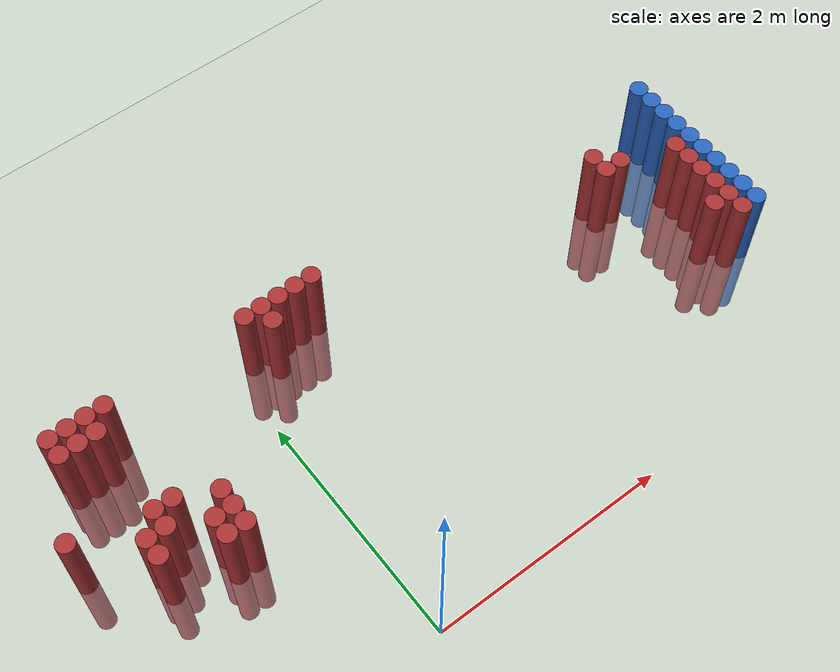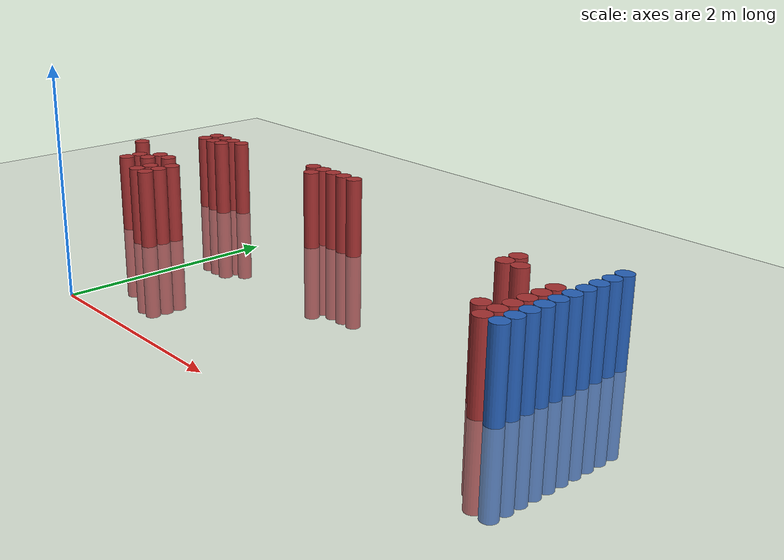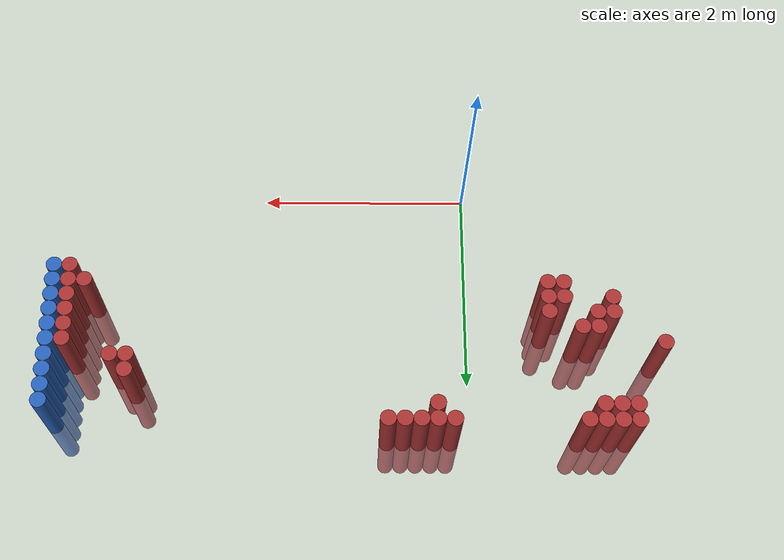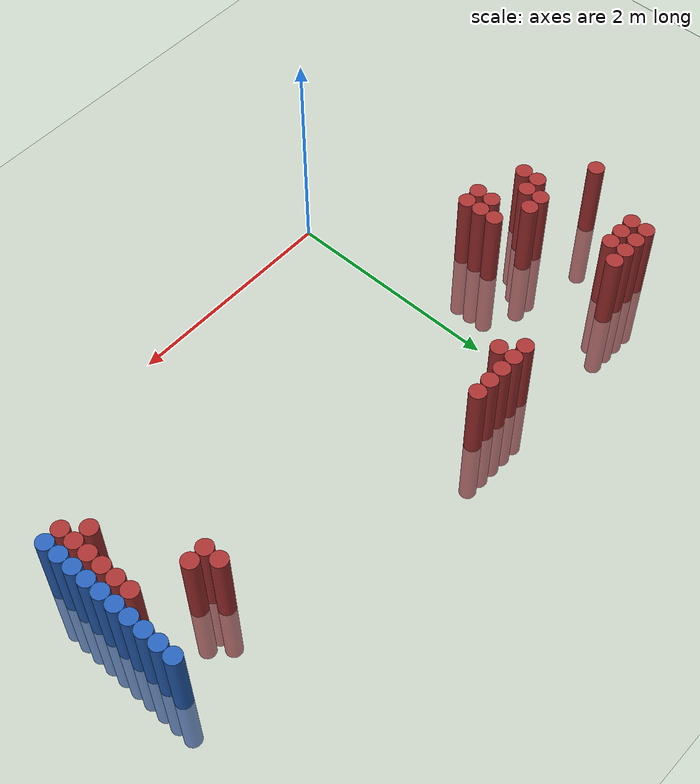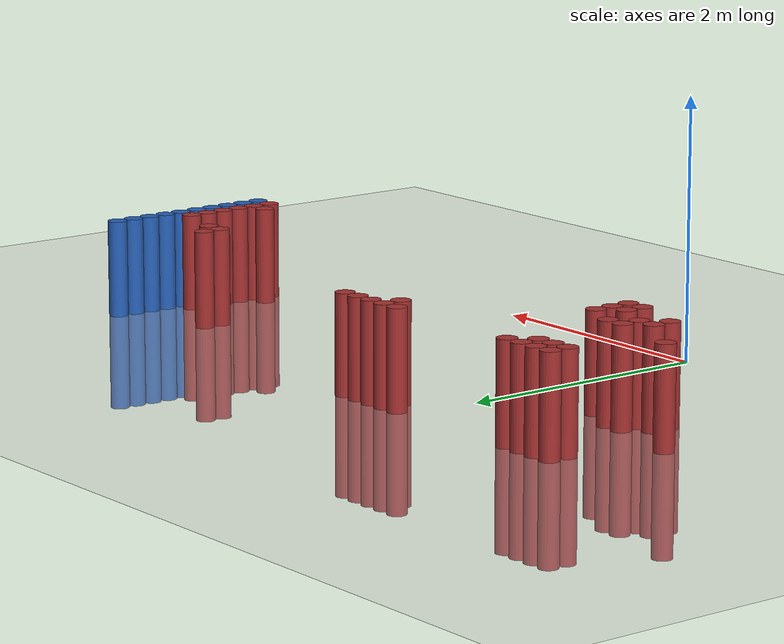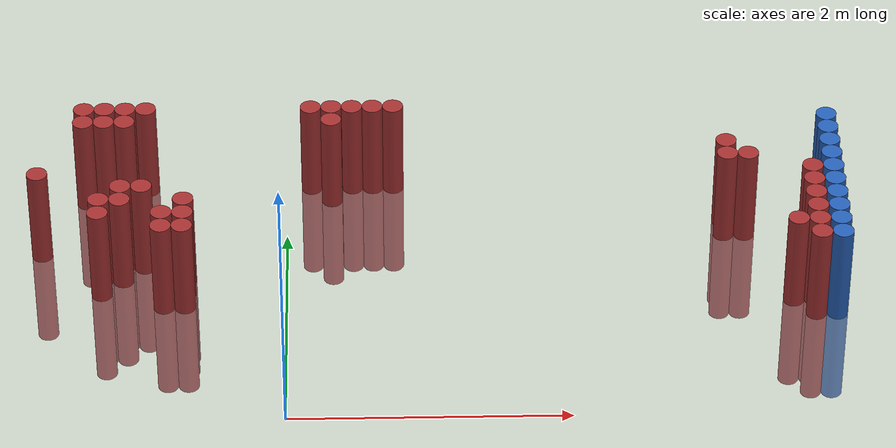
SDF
<sdf version="1.6">
 <world name="default">
  <model name="ground_plane">
   <static>1</static>
   <link name="link">
    <collision name="collision">
     <geometry><plane><normal>0 0 1</normal><size>100 100</size></plane></geometry>
     <surface><friction><ode><mu>100</mu><mu2>50</mu2></ode></friction></surface>
    </collision>
    <visual name="visual">
     <cast_shadows>0</cast_shadows>
     <geometry><plane><normal>0 0 1</normal><size>100 100</size></plane></geometry>
     <material>
      <script><uri>file://media/materials/scripts/gazebo.material</uri><name>Gazebo/Grey</name></script>
     </material>
    </visual>
   </link>
  </model>
  <model name="unit_cylinder_130">
   <static>1</static>
   <pose>3.925000 1.225000 0.000000 0.000000 0.000000 0.000000</pose>
   <link name="link">
    <inertial>
     <mass>1</mass>
     <inertia><ixx>0.145833</ixx><ixy>0</ixy><ixz>0</ixz><iyy>0.145833</iyy><iyz>0</iyz><izz>0.125</izz></inertia>
    </inertial>
    <collision name="collision">
     <geometry><cylinder><radius>0.075000</radius><length>1.5</length></cylinder></geometry>
    </collision>
    <visual name="visual">
     <geometry><cylinder><radius>0.075000</radius><length>1.5</length></cylinder></geometry>
     <material>
      <ambient>0.152000 0.379000 0.720000 1</ambient>
      <diffuse>0.152000 0.379000 0.720000 1</diffuse>
     </material>
     <material>
      <script><name>Gazebo/Grey</name><uri>file://media/materials/scripts/gazebo.material</uri></script>
     </material>
    </visual>
   </link>
  </model>
  <model name="unit_cylinder_132">
   <static>1</static>
   <pose>3.925000 1.375000 0.000000 0.000000 0.000000 0.000000</pose>
   <link name="link">
    <inertial>
     <mass>1</mass>
     <inertia><ixx>0.145833</ixx><ixy>0</ixy><ixz>0</ixz><iyy>0.145833</iyy><iyz>0</iyz><izz>0.125</izz></inertia>
    </inertial>
    <collision name="collision">
     <geometry><cylinder><radius>0.075000</radius><length>1.5</length></cylinder></geometry>
    </collision>
    <visual name="visual">
     <geometry><cylinder><radius>0.075000</radius><length>1.5</length></cylinder></geometry>
     <material>
      <ambient>0.152000 0.379000 0.720000 1</ambient>
      <diffuse>0.152000 0.379000 0.720000 1</diffuse>
     </material>
     <material>
      <script><name>Gazebo/Grey</name><uri>file://media/materials/scripts/gazebo.material</uri></script>
     </material>
    </visual>
   </link>
  </model>
  <model name="unit_cylinder_134">
   <static>1</static>
   <pose>3.925000 1.525000 0.000000 0.000000 0.000000 0.000000</pose>
   <link name="link">
    <inertial>
     <mass>1</mass>
     <inertia><ixx>0.145833</ixx><ixy>0</ixy><ixz>0</ixz><iyy>0.145833</iyy><iyz>0</iyz><izz>0.125</izz></inertia>
    </inertial>
    <collision name="collision">
     <geometry><cylinder><radius>0.075000</radius><length>1.5</length></cylinder></geometry>
    </collision>
    <visual name="visual">
     <geometry><cylinder><radius>0.075000</radius><length>1.5</length></cylinder></geometry>
     <material>
      <ambient>0.152000 0.379000 0.720000 1</ambient>
      <diffuse>0.152000 0.379000 0.720000 1</diffuse>
     </material>
     <material>
      <script><name>Gazebo/Grey</name><uri>file://media/materials/scripts/gazebo.material</uri></script>
     </material>
    </visual>
   </link>
  </model>
  <model name="unit_cylinder_136">
   <static>1</static>
   <pose>3.925000 1.675000 0.000000 0.000000 0.000000 0.000000</pose>
   <link name="link">
    <inertial>
     <mass>1</mass>
     <inertia><ixx>0.145833</ixx><ixy>0</ixy><ixz>0</ixz><iyy>0.145833</iyy><iyz>0</iyz><izz>0.125</izz></inertia>
    </inertial>
    <collision name="collision">
     <geometry><cylinder><radius>0.075000</radius><length>1.5</length></cylinder></geometry>
    </collision>
    <visual name="visual">
     <geometry><cylinder><radius>0.075000</radius><length>1.5</length></cylinder></geometry>
     <material>
      <ambient>0.152000 0.379000 0.720000 1</ambient>
      <diffuse>0.152000 0.379000 0.720000 1</diffuse>
     </material>
     <material>
      <script><name>Gazebo/Grey</name><uri>file://media/materials/scripts/gazebo.material</uri></script>
     </material>
    </visual>
   </link>
  </model>
  <model name="unit_cylinder_138">
   <static>1</static>
   <pose>3.925000 1.825000 0.000000 0.000000 0.000000 0.000000</pose>
   <link name="link">
    <inertial>
     <mass>1</mass>
     <inertia><ixx>0.145833</ixx><ixy>0</ixy><ixz>0</ixz><iyy>0.145833</iyy><iyz>0</iyz><izz>0.125</izz></inertia>
    </inertial>
    <collision name="collision">
     <geometry><cylinder><radius>0.075000</radius><length>1.5</length></cylinder></geometry>
    </collision>
    <visual name="visual">
     <geometry><cylinder><radius>0.075000</radius><length>1.5</length></cylinder></geometry>
     <material>
      <ambient>0.152000 0.379000 0.720000 1</ambient>
      <diffuse>0.152000 0.379000 0.720000 1</diffuse>
     </material>
     <material>
      <script><name>Gazebo/Grey</name><uri>file://media/materials/scripts/gazebo.material</uri></script>
     </material>
    </visual>
   </link>
  </model>
  <model name="unit_cylinder_140">
   <static>1</static>
   <pose>3.925000 1.975000 0.000000 0.000000 0.000000 0.000000</pose>
   <link name="link">
    <inertial>
     <mass>1</mass>
     <inertia><ixx>0.145833</ixx><ixy>0</ixy><ixz>0</ixz><iyy>0.145833</iyy><iyz>0</iyz><izz>0.125</izz></inertia>
    </inertial>
    <collision name="collision">
     <geometry><cylinder><radius>0.075000</radius><length>1.5</length></cylinder></geometry>
    </collision>
    <visual name="visual">
     <geometry><cylinder><radius>0.075000</radius><length>1.5</length></cylinder></geometry>
     <material>
      <ambient>0.152000 0.379000 0.720000 1</ambient>
      <diffuse>0.152000 0.379000 0.720000 1</diffuse>
     </material>
     <material>
      <script><name>Gazebo/Grey</name><uri>file://media/materials/scripts/gazebo.material</uri></script>
     </material>
    </visual>
   </link>
  </model>
  <model name="unit_cylinder_142">
   <static>1</static>
   <pose>3.925000 2.125000 0.000000 0.000000 0.000000 0.000000</pose>
   <link name="link">
    <inertial>
     <mass>1</mass>
     <inertia><ixx>0.145833</ixx><ixy>0</ixy><ixz>0</ixz><iyy>0.145833</iyy><iyz>0</iyz><izz>0.125</izz></inertia>
    </inertial>
    <collision name="collision">
     <geometry><cylinder><radius>0.075000</radius><length>1.5</length></cylinder></geometry>
    </collision>
    <visual name="visual">
     <geometry><cylinder><radius>0.075000</radius><length>1.5</length></cylinder></geometry>
     <material>
      <ambient>0.152000 0.379000 0.720000 1</ambient>
      <diffuse>0.152000 0.379000 0.720000 1</diffuse>
     </material>
     <material>
      <script><name>Gazebo/Grey</name><uri>file://media/materials/scripts/gazebo.material</uri></script>
     </material>
    </visual>
   </link>
  </model>
  <model name="unit_cylinder_144">
   <static>1</static>
   <pose>3.925000 2.275000 0.000000 0.000000 0.000000 0.000000</pose>
   <link name="link">
    <inertial>
     <mass>1</mass>
     <inertia><ixx>0.145833</ixx><ixy>0</ixy><ixz>0</ixz><iyy>0.145833</iyy><iyz>0</iyz><izz>0.125</izz></inertia>
    </inertial>
    <collision name="collision">
     <geometry><cylinder><radius>0.075000</radius><length>1.5</length></cylinder></geometry>
    </collision>
    <visual name="visual">
     <geometry><cylinder><radius>0.075000</radius><length>1.5</length></cylinder></geometry>
     <material>
      <ambient>0.152000 0.379000 0.720000 1</ambient>
      <diffuse>0.152000 0.379000 0.720000 1</diffuse>
     </material>
     <material>
      <script><name>Gazebo/Grey</name><uri>file://media/materials/scripts/gazebo.material</uri></script>
     </material>
    </visual>
   </link>
  </model>
  <model name="unit_cylinder_146">
   <static>1</static>
   <pose>3.925000 2.425000 0.000000 0.000000 0.000000 0.000000</pose>
   <link name="link">
    <inertial>
     <mass>1</mass>
     <inertia><ixx>0.145833</ixx><ixy>0</ixy><ixz>0</ixz><iyy>0.145833</iyy><iyz>0</iyz><izz>0.125</izz></inertia>
    </inertial>
    <collision name="collision">
     <geometry><cylinder><radius>0.075000</radius><length>1.5</length></cylinder></geometry>
    </collision>
    <visual name="visual">
     <geometry><cylinder><radius>0.075000</radius><length>1.5</length></cylinder></geometry>
     <material>
      <ambient>0.152000 0.379000 0.720000 1</ambient>
      <diffuse>0.152000 0.379000 0.720000 1</diffuse>
     </material>
     <material>
      <script><name>Gazebo/Grey</name><uri>file://media/materials/scripts/gazebo.material</uri></script>
     </material>
    </visual>
   </link>
  </model>
  <model name="unit_cylinder_319">
   <static>1</static>
   <pose>-1.775000 1.825000 0.000000 0.000000 0.000000 0.000000</pose>
   <link name="link">
    <inertial>
     <mass>1</mass>
     <inertia><ixx>0.145833</ixx><ixy>0</ixy><ixz>0</ixz><iyy>0.145833</iyy><iyz>0</iyz><izz>0.125</izz></inertia>
    </inertial>
    <collision name="collision">
     <geometry><cylinder><radius>0.075000</radius><length>1.5</length></cylinder></geometry>
    </collision>
    <visual name="visual">
     <geometry><cylinder><radius>0.075000</radius><length>1.5</length></cylinder></geometry>
     <material>
      <ambient>0.648000 0.192000 0.192000 1</ambient>
      <diffuse>0.648000 0.192000 0.192000 1</diffuse>
     </material>
     <material>
      <script><name>Gazebo/Grey</name><uri>file://media/materials/scripts/gazebo.material</uri></script>
     </material>
    </visual>
   </link>
  </model>
  <model name="unit_cylinder_323">
   <static>1</static>
   <pose>-1.475000 2.425000 0.000000 0.000000 0.000000 0.000000</pose>
   <link name="link">
    <inertial>
     <mass>1</mass>
     <inertia><ixx>0.145833</ixx><ixy>0</ixy><ixz>0</ixz><iyy>0.145833</iyy><iyz>0</iyz><izz>0.125</izz></inertia>
    </inertial>
    <collision name="collision">
     <geometry><cylinder><radius>0.075000</radius><length>1.5</length></cylinder></geometry>
    </collision>
    <visual name="visual">
     <geometry><cylinder><radius>0.075000</radius><length>1.5</length></cylinder></geometry>
     <material>
      <ambient>0.648000 0.192000 0.192000 1</ambient>
      <diffuse>0.648000 0.192000 0.192000 1</diffuse>
     </material>
     <material>
      <script><name>Gazebo/Grey</name><uri>file://media/materials/scripts/gazebo.material</uri></script>
     </material>
    </visual>
   </link>
  </model>
  <model name="unit_cylinder_324">
   <static>1</static>
   <pose>-1.475000 2.575000 0.000000 0.000000 0.000000 0.000000</pose>
   <link name="link">
    <inertial>
     <mass>1</mass>
     <inertia><ixx>0.145833</ixx><ixy>0</ixy><ixz>0</ixz><iyy>0.145833</iyy><iyz>0</iyz><izz>0.125</izz></inertia>
    </inertial>
    <collision name="collision">
     <geometry><cylinder><radius>0.075000</radius><length>1.5</length></cylinder></geometry>
    </collision>
    <visual name="visual">
     <geometry><cylinder><radius>0.075000</radius><length>1.5</length></cylinder></geometry>
     <material>
      <ambient>0.648000 0.192000 0.192000 1</ambient>
      <diffuse>0.648000 0.192000 0.192000 1</diffuse>
     </material>
     <material>
      <script><name>Gazebo/Grey</name><uri>file://media/materials/scripts/gazebo.material</uri></script>
     </material>
    </visual>
   </link>
  </model>
  <model name="unit_cylinder_327">
   <static>1</static>
   <pose>-1.325000 1.375000 0.000000 0.000000 0.000000 0.000000</pose>
   <link name="link">
    <inertial>
     <mass>1</mass>
     <inertia><ixx>0.145833</ixx><ixy>0</ixy><ixz>0</ixz><iyy>0.145833</iyy><iyz>0</iyz><izz>0.125</izz></inertia>
    </inertial>
    <collision name="collision">
     <geometry><cylinder><radius>0.075000</radius><length>1.5</length></cylinder></geometry>
    </collision>
    <visual name="visual">
     <geometry><cylinder><radius>0.075000</radius><length>1.5</length></cylinder></geometry>
     <material>
      <ambient>0.648000 0.192000 0.192000 1</ambient>
      <diffuse>0.648000 0.192000 0.192000 1</diffuse>
     </material>
     <material>
      <script><name>Gazebo/Grey</name><uri>file://media/materials/scripts/gazebo.material</uri></script>
     </material>
    </visual>
   </link>
  </model>
  <model name="unit_cylinder_328">
   <static>1</static>
   <pose>-1.325000 1.525000 0.000000 0.000000 0.000000 0.000000</pose>
   <link name="link">
    <inertial>
     <mass>1</mass>
     <inertia><ixx>0.145833</ixx><ixy>0</ixy><ixz>0</ixz><iyy>0.145833</iyy><iyz>0</iyz><izz>0.125</izz></inertia>
    </inertial>
    <collision name="collision">
     <geometry><cylinder><radius>0.075000</radius><length>1.5</length></cylinder></geometry>
    </collision>
    <visual name="visual">
     <geometry><cylinder><radius>0.075000</radius><length>1.5</length></cylinder></geometry>
     <material>
      <ambient>0.648000 0.192000 0.192000 1</ambient>
      <diffuse>0.648000 0.192000 0.192000 1</diffuse>
     </material>
     <material>
      <script><name>Gazebo/Grey</name><uri>file://media/materials/scripts/gazebo.material</uri></script>
     </material>
    </visual>
   </link>
  </model>
  <model name="unit_cylinder_329">
   <static>1</static>
   <pose>-1.325000 2.425000 0.000000 0.000000 0.000000 0.000000</pose>
   <link name="link">
    <inertial>
     <mass>1</mass>
     <inertia><ixx>0.145833</ixx><ixy>0</ixy><ixz>0</ixz><iyy>0.145833</iyy><iyz>0</iyz><izz>0.125</izz></inertia>
    </inertial>
    <collision name="collision">
     <geometry><cylinder><radius>0.075000</radius><length>1.5</length></cylinder></geometry>
    </collision>
    <visual name="visual">
     <geometry><cylinder><radius>0.075000</radius><length>1.5</length></cylinder></geometry>
     <material>
      <ambient>0.648000 0.192000 0.192000 1</ambient>
      <diffuse>0.648000 0.192000 0.192000 1</diffuse>
     </material>
     <material>
      <script><name>Gazebo/Grey</name><uri>file://media/materials/scripts/gazebo.material</uri></script>
     </material>
    </visual>
   </link>
  </model>
  <model name="unit_cylinder_330">
   <static>1</static>
   <pose>-1.325000 2.575000 0.000000 0.000000 0.000000 0.000000</pose>
   <link name="link">
    <inertial>
     <mass>1</mass>
     <inertia><ixx>0.145833</ixx><ixy>0</ixy><ixz>0</ixz><iyy>0.145833</iyy><iyz>0</iyz><izz>0.125</izz></inertia>
    </inertial>
    <collision name="collision">
     <geometry><cylinder><radius>0.075000</radius><length>1.5</length></cylinder></geometry>
    </collision>
    <visual name="visual">
     <geometry><cylinder><radius>0.075000</radius><length>1.5</length></cylinder></geometry>
     <material>
      <ambient>0.648000 0.192000 0.192000 1</ambient>
      <diffuse>0.648000 0.192000 0.192000 1</diffuse>
     </material>
     <material>
      <script><name>Gazebo/Grey</name><uri>file://media/materials/scripts/gazebo.material</uri></script>
     </material>
    </visual>
   </link>
  </model>
  <model name="unit_cylinder_337">
   <static>1</static>
   <pose>-1.175000 1.525000 0.000000 0.000000 0.000000 0.000000</pose>
   <link name="link">
    <inertial>
     <mass>1</mass>
     <inertia><ixx>0.145833</ixx><ixy>0</ixy><ixz>0</ixz><iyy>0.145833</iyy><iyz>0</iyz><izz>0.125</izz></inertia>
    </inertial>
    <collision name="collision">
     <geometry><cylinder><radius>0.075000</radius><length>1.5</length></cylinder></geometry>
    </collision>
    <visual name="visual">
     <geometry><cylinder><radius>0.075000</radius><length>1.5</length></cylinder></geometry>
     <material>
      <ambient>0.648000 0.192000 0.192000 1</ambient>
      <diffuse>0.648000 0.192000 0.192000 1</diffuse>
     </material>
     <material>
      <script><name>Gazebo/Grey</name><uri>file://media/materials/scripts/gazebo.material</uri></script>
     </material>
    </visual>
   </link>
  </model>
  <model name="unit_cylinder_338">
   <static>1</static>
   <pose>-1.175000 1.675000 0.000000 0.000000 0.000000 0.000000</pose>
   <link name="link">
    <inertial>
     <mass>1</mass>
     <inertia><ixx>0.145833</ixx><ixy>0</ixy><ixz>0</ixz><iyy>0.145833</iyy><iyz>0</iyz><izz>0.125</izz></inertia>
    </inertial>
    <collision name="collision">
     <geometry><cylinder><radius>0.075000</radius><length>1.5</length></cylinder></geometry>
    </collision>
    <visual name="visual">
     <geometry><cylinder><radius>0.075000</radius><length>1.5</length></cylinder></geometry>
     <material>
      <ambient>0.648000 0.192000 0.192000 1</ambient>
      <diffuse>0.648000 0.192000 0.192000 1</diffuse>
     </material>
     <material>
      <script><name>Gazebo/Grey</name><uri>file://media/materials/scripts/gazebo.material</uri></script>
     </material>
    </visual>
   </link>
  </model>
  <model name="unit_cylinder_339">
   <static>1</static>
   <pose>-1.175000 2.425000 0.000000 0.000000 0.000000 0.000000</pose>
   <link name="link">
    <inertial>
     <mass>1</mass>
     <inertia><ixx>0.145833</ixx><ixy>0</ixy><ixz>0</ixz><iyy>0.145833</iyy><iyz>0</iyz><izz>0.125</izz></inertia>
    </inertial>
    <collision name="collision">
     <geometry><cylinder><radius>0.075000</radius><length>1.5</length></cylinder></geometry>
    </collision>
    <visual name="visual">
     <geometry><cylinder><radius>0.075000</radius><length>1.5</length></cylinder></geometry>
     <material>
      <ambient>0.648000 0.192000 0.192000 1</ambient>
      <diffuse>0.648000 0.192000 0.192000 1</diffuse>
     </material>
     <material>
      <script><name>Gazebo/Grey</name><uri>file://media/materials/scripts/gazebo.material</uri></script>
     </material>
    </visual>
   </link>
  </model>
  <model name="unit_cylinder_340">
   <static>1</static>
   <pose>-1.175000 2.575000 0.000000 0.000000 0.000000 0.000000</pose>
   <link name="link">
    <inertial>
     <mass>1</mass>
     <inertia><ixx>0.145833</ixx><ixy>0</ixy><ixz>0</ixz><iyy>0.145833</iyy><iyz>0</iyz><izz>0.125</izz></inertia>
    </inertial>
    <collision name="collision">
     <geometry><cylinder><radius>0.075000</radius><length>1.5</length></cylinder></geometry>
    </collision>
    <visual name="visual">
     <geometry><cylinder><radius>0.075000</radius><length>1.5</length></cylinder></geometry>
     <material>
      <ambient>0.648000 0.192000 0.192000 1</ambient>
      <diffuse>0.648000 0.192000 0.192000 1</diffuse>
     </material>
     <material>
      <script><name>Gazebo/Grey</name><uri>file://media/materials/scripts/gazebo.material</uri></script>
     </material>
    </visual>
   </link>
  </model>
  <model name="unit_cylinder_345">
   <static>1</static>
   <pose>-1.025000 1.675000 0.000000 0.000000 0.000000 0.000000</pose>
   <link name="link">
    <inertial>
     <mass>1</mass>
     <inertia><ixx>0.145833</ixx><ixy>0</ixy><ixz>0</ixz><iyy>0.145833</iyy><iyz>0</iyz><izz>0.125</izz></inertia>
    </inertial>
    <collision name="collision">
     <geometry><cylinder><radius>0.075000</radius><length>1.5</length></cylinder></geometry>
    </collision>
    <visual name="visual">
     <geometry><cylinder><radius>0.075000</radius><length>1.5</length></cylinder></geometry>
     <material>
      <ambient>0.648000 0.192000 0.192000 1</ambient>
      <diffuse>0.648000 0.192000 0.192000 1</diffuse>
     </material>
     <material>
      <script><name>Gazebo/Grey</name><uri>file://media/materials/scripts/gazebo.material</uri></script>
     </material>
    </visual>
   </link>
  </model>
  <model name="unit_cylinder_346">
   <static>1</static>
   <pose>-1.025000 2.575000 0.000000 0.000000 0.000000 0.000000</pose>
   <link name="link">
    <inertial>
     <mass>1</mass>
     <inertia><ixx>0.145833</ixx><ixy>0</ixy><ixz>0</ixz><iyy>0.145833</iyy><iyz>0</iyz><izz>0.125</izz></inertia>
    </inertial>
    <collision name="collision">
     <geometry><cylinder><radius>0.075000</radius><length>1.5</length></cylinder></geometry>
    </collision>
    <visual name="visual">
     <geometry><cylinder><radius>0.075000</radius><length>1.5</length></cylinder></geometry>
     <material>
      <ambient>0.648000 0.192000 0.192000 1</ambient>
      <diffuse>0.648000 0.192000 0.192000 1</diffuse>
     </material>
     <material>
      <script><name>Gazebo/Grey</name><uri>file://media/materials/scripts/gazebo.material</uri></script>
     </material>
    </visual>
   </link>
  </model>
  <model name="unit_cylinder_350">
   <static>1</static>
   <pose>-0.875000 1.225000 0.000000 0.000000 0.000000 0.000000</pose>
   <link name="link">
    <inertial>
     <mass>1</mass>
     <inertia><ixx>0.145833</ixx><ixy>0</ixy><ixz>0</ixz><iyy>0.145833</iyy><iyz>0</iyz><izz>0.125</izz></inertia>
    </inertial>
    <collision name="collision">
     <geometry><cylinder><radius>0.075000</radius><length>1.5</length></cylinder></geometry>
    </collision>
    <visual name="visual">
     <geometry><cylinder><radius>0.075000</radius><length>1.5</length></cylinder></geometry>
     <material>
      <ambient>0.648000 0.192000 0.192000 1</ambient>
      <diffuse>0.648000 0.192000 0.192000 1</diffuse>
     </material>
     <material>
      <script><name>Gazebo/Grey</name><uri>file://media/materials/scripts/gazebo.material</uri></script>
     </material>
    </visual>
   </link>
  </model>
  <model name="unit_cylinder_351">
   <static>1</static>
   <pose>-0.875000 1.375000 0.000000 0.000000 0.000000 0.000000</pose>
   <link name="link">
    <inertial>
     <mass>1</mass>
     <inertia><ixx>0.145833</ixx><ixy>0</ixy><ixz>0</ixz><iyy>0.145833</iyy><iyz>0</iyz><izz>0.125</izz></inertia>
    </inertial>
    <collision name="collision">
     <geometry><cylinder><radius>0.075000</radius><length>1.5</length></cylinder></geometry>
    </collision>
    <visual name="visual">
     <geometry><cylinder><radius>0.075000</radius><length>1.5</length></cylinder></geometry>
     <material>
      <ambient>0.648000 0.192000 0.192000 1</ambient>
      <diffuse>0.648000 0.192000 0.192000 1</diffuse>
     </material>
     <material>
      <script><name>Gazebo/Grey</name><uri>file://media/materials/scripts/gazebo.material</uri></script>
     </material>
    </visual>
   </link>
  </model>
  <model name="unit_cylinder_358">
   <static>1</static>
   <pose>-0.725000 1.225000 0.000000 0.000000 0.000000 0.000000</pose>
   <link name="link">
    <inertial>
     <mass>1</mass>
     <inertia><ixx>0.145833</ixx><ixy>0</ixy><ixz>0</ixz><iyy>0.145833</iyy><iyz>0</iyz><izz>0.125</izz></inertia>
    </inertial>
    <collision name="collision">
     <geometry><cylinder><radius>0.075000</radius><length>1.5</length></cylinder></geometry>
    </collision>
    <visual name="visual">
     <geometry><cylinder><radius>0.075000</radius><length>1.5</length></cylinder></geometry>
     <material>
      <ambient>0.648000 0.192000 0.192000 1</ambient>
      <diffuse>0.648000 0.192000 0.192000 1</diffuse>
     </material>
     <material>
      <script><name>Gazebo/Grey</name><uri>file://media/materials/scripts/gazebo.material</uri></script>
     </material>
    </visual>
   </link>
  </model>
  <model name="unit_cylinder_359">
   <static>1</static>
   <pose>-0.725000 1.375000 0.000000 0.000000 0.000000 0.000000</pose>
   <link name="link">
    <inertial>
     <mass>1</mass>
     <inertia><ixx>0.145833</ixx><ixy>0</ixy><ixz>0</ixz><iyy>0.145833</iyy><iyz>0</iyz><izz>0.125</izz></inertia>
    </inertial>
    <collision name="collision">
     <geometry><cylinder><radius>0.075000</radius><length>1.5</length></cylinder></geometry>
    </collision>
    <visual name="visual">
     <geometry><cylinder><radius>0.075000</radius><length>1.5</length></cylinder></geometry>
     <material>
      <ambient>0.648000 0.192000 0.192000 1</ambient>
      <diffuse>0.648000 0.192000 0.192000 1</diffuse>
     </material>
     <material>
      <script><name>Gazebo/Grey</name><uri>file://media/materials/scripts/gazebo.material</uri></script>
     </material>
    </visual>
   </link>
  </model>
  <model name="unit_cylinder_360">
   <static>1</static>
   <pose>-0.725000 1.525000 0.000000 0.000000 0.000000 0.000000</pose>
   <link name="link">
    <inertial>
     <mass>1</mass>
     <inertia><ixx>0.145833</ixx><ixy>0</ixy><ixz>0</ixz><iyy>0.145833</iyy><iyz>0</iyz><izz>0.125</izz></inertia>
    </inertial>
    <collision name="collision">
     <geometry><cylinder><radius>0.075000</radius><length>1.5</length></cylinder></geometry>
    </collision>
    <visual name="visual">
     <geometry><cylinder><radius>0.075000</radius><length>1.5</length></cylinder></geometry>
     <material>
      <ambient>0.648000 0.192000 0.192000 1</ambient>
      <diffuse>0.648000 0.192000 0.192000 1</diffuse>
     </material>
     <material>
      <script><name>Gazebo/Grey</name><uri>file://media/materials/scripts/gazebo.material</uri></script>
     </material>
    </visual>
   </link>
  </model>
  <model name="unit_cylinder_393">
   <static>1</static>
   <pose>0.175000 2.575000 0.000000 0.000000 0.000000 0.000000</pose>
   <link name="link">
    <inertial>
     <mass>1</mass>
     <inertia><ixx>0.145833</ixx><ixy>0</ixy><ixz>0</ixz><iyy>0.145833</iyy><iyz>0</iyz><izz>0.125</izz></inertia>
    </inertial>
    <collision name="collision">
     <geometry><cylinder><radius>0.075000</radius><length>1.5</length></cylinder></geometry>
    </collision>
    <visual name="visual">
     <geometry><cylinder><radius>0.075000</radius><length>1.5</length></cylinder></geometry>
     <material>
      <ambient>0.648000 0.192000 0.192000 1</ambient>
      <diffuse>0.648000 0.192000 0.192000 1</diffuse>
     </material>
     <material>
      <script><name>Gazebo/Grey</name><uri>file://media/materials/scripts/gazebo.material</uri></script>
     </material>
    </visual>
   </link>
  </model>
  <model name="unit_cylinder_396">
   <static>1</static>
   <pose>0.325000 2.425000 0.000000 0.000000 0.000000 0.000000</pose>
   <link name="link">
    <inertial>
     <mass>1</mass>
     <inertia><ixx>0.145833</ixx><ixy>0</ixy><ixz>0</ixz><iyy>0.145833</iyy><iyz>0</iyz><izz>0.125</izz></inertia>
    </inertial>
    <collision name="collision">
     <geometry><cylinder><radius>0.075000</radius><length>1.5</length></cylinder></geometry>
    </collision>
    <visual name="visual">
     <geometry><cylinder><radius>0.075000</radius><length>1.5</length></cylinder></geometry>
     <material>
      <ambient>0.648000 0.192000 0.192000 1</ambient>
      <diffuse>0.648000 0.192000 0.192000 1</diffuse>
     </material>
     <material>
      <script><name>Gazebo/Grey</name><uri>file://media/materials/scripts/gazebo.material</uri></script>
     </material>
    </visual>
   </link>
  </model>
  <model name="unit_cylinder_397">
   <static>1</static>
   <pose>0.325000 2.575000 0.000000 0.000000 0.000000 0.000000</pose>
   <link name="link">
    <inertial>
     <mass>1</mass>
     <inertia><ixx>0.145833</ixx><ixy>0</ixy><ixz>0</ixz><iyy>0.145833</iyy><iyz>0</iyz><izz>0.125</izz></inertia>
    </inertial>
    <collision name="collision">
     <geometry><cylinder><radius>0.075000</radius><length>1.5</length></cylinder></geometry>
    </collision>
    <visual name="visual">
     <geometry><cylinder><radius>0.075000</radius><length>1.5</length></cylinder></geometry>
     <material>
      <ambient>0.648000 0.192000 0.192000 1</ambient>
      <diffuse>0.648000 0.192000 0.192000 1</diffuse>
     </material>
     <material>
      <script><name>Gazebo/Grey</name><uri>file://media/materials/scripts/gazebo.material</uri></script>
     </material>
    </visual>
   </link>
  </model>
  <model name="unit_cylinder_399">
   <static>1</static>
   <pose>0.475000 2.575000 0.000000 0.000000 0.000000 0.000000</pose>
   <link name="link">
    <inertial>
     <mass>1</mass>
     <inertia><ixx>0.145833</ixx><ixy>0</ixy><ixz>0</ixz><iyy>0.145833</iyy><iyz>0</iyz><izz>0.125</izz></inertia>
    </inertial>
    <collision name="collision">
     <geometry><cylinder><radius>0.075000</radius><length>1.5</length></cylinder></geometry>
    </collision>
    <visual name="visual">
     <geometry><cylinder><radius>0.075000</radius><length>1.5</length></cylinder></geometry>
     <material>
      <ambient>0.648000 0.192000 0.192000 1</ambient>
      <diffuse>0.648000 0.192000 0.192000 1</diffuse>
     </material>
     <material>
      <script><name>Gazebo/Grey</name><uri>file://media/materials/scripts/gazebo.material</uri></script>
     </material>
    </visual>
   </link>
  </model>
  <model name="unit_cylinder_401">
   <static>1</static>
   <pose>0.625000 2.575000 0.000000 0.000000 0.000000 0.000000</pose>
   <link name="link">
    <inertial>
     <mass>1</mass>
     <inertia><ixx>0.145833</ixx><ixy>0</ixy><ixz>0</ixz><iyy>0.145833</iyy><iyz>0</iyz><izz>0.125</izz></inertia>
    </inertial>
    <collision name="collision">
     <geometry><cylinder><radius>0.075000</radius><length>1.5</length></cylinder></geometry>
    </collision>
    <visual name="visual">
     <geometry><cylinder><radius>0.075000</radius><length>1.5</length></cylinder></geometry>
     <material>
      <ambient>0.648000 0.192000 0.192000 1</ambient>
      <diffuse>0.648000 0.192000 0.192000 1</diffuse>
     </material>
     <material>
      <script><name>Gazebo/Grey</name><uri>file://media/materials/scripts/gazebo.material</uri></script>
     </material>
    </visual>
   </link>
  </model>
  <model name="unit_cylinder_405">
   <static>1</static>
   <pose>0.775000 2.575000 0.000000 0.000000 0.000000 0.000000</pose>
   <link name="link">
    <inertial>
     <mass>1</mass>
     <inertia><ixx>0.145833</ixx><ixy>0</ixy><ixz>0</ixz><iyy>0.145833</iyy><iyz>0</iyz><izz>0.125</izz></inertia>
    </inertial>
    <collision name="collision">
     <geometry><cylinder><radius>0.075000</radius><length>1.5</length></cylinder></geometry>
    </collision>
    <visual name="visual">
     <geometry><cylinder><radius>0.075000</radius><length>1.5</length></cylinder></geometry>
     <material>
      <ambient>0.648000 0.192000 0.192000 1</ambient>
      <diffuse>0.648000 0.192000 0.192000 1</diffuse>
     </material>
     <material>
      <script><name>Gazebo/Grey</name><uri>file://media/materials/scripts/gazebo.material</uri></script>
     </material>
    </visual>
   </link>
  </model>
  <model name="unit_cylinder_449">
   <static>1</static>
   <pose>3.175000 1.975000 0.000000 0.000000 0.000000 0.000000</pose>
   <link name="link">
    <inertial>
     <mass>1</mass>
     <inertia><ixx>0.145833</ixx><ixy>0</ixy><ixz>0</ixz><iyy>0.145833</iyy><iyz>0</iyz><izz>0.125</izz></inertia>
    </inertial>
    <collision name="collision">
     <geometry><cylinder><radius>0.075000</radius><length>1.5</length></cylinder></geometry>
    </collision>
    <visual name="visual">
     <geometry><cylinder><radius>0.075000</radius><length>1.5</length></cylinder></geometry>
     <material>
      <ambient>0.648000 0.192000 0.192000 1</ambient>
      <diffuse>0.648000 0.192000 0.192000 1</diffuse>
     </material>
     <material>
      <script><name>Gazebo/Grey</name><uri>file://media/materials/scripts/gazebo.material</uri></script>
     </material>
    </visual>
   </link>
  </model>
  <model name="unit_cylinder_450">
   <static>1</static>
   <pose>3.175000 2.125000 0.000000 0.000000 0.000000 0.000000</pose>
   <link name="link">
    <inertial>
     <mass>1</mass>
     <inertia><ixx>0.145833</ixx><ixy>0</ixy><ixz>0</ixz><iyy>0.145833</iyy><iyz>0</iyz><izz>0.125</izz></inertia>
    </inertial>
    <collision name="collision">
     <geometry><cylinder><radius>0.075000</radius><length>1.5</length></cylinder></geometry>
    </collision>
    <visual name="visual">
     <geometry><cylinder><radius>0.075000</radius><length>1.5</length></cylinder></geometry>
     <material>
      <ambient>0.648000 0.192000 0.192000 1</ambient>
      <diffuse>0.648000 0.192000 0.192000 1</diffuse>
     </material>
     <material>
      <script><name>Gazebo/Grey</name><uri>file://media/materials/scripts/gazebo.material</uri></script>
     </material>
    </visual>
   </link>
  </model>
  <model name="unit_cylinder_455">
   <static>1</static>
   <pose>3.325000 1.975000 0.000000 0.000000 0.000000 0.000000</pose>
   <link name="link">
    <inertial>
     <mass>1</mass>
     <inertia><ixx>0.145833</ixx><ixy>0</ixy><ixz>0</ixz><iyy>0.145833</iyy><iyz>0</iyz><izz>0.125</izz></inertia>
    </inertial>
    <collision name="collision">
     <geometry><cylinder><radius>0.075000</radius><length>1.5</length></cylinder></geometry>
    </collision>
    <visual name="visual">
     <geometry><cylinder><radius>0.075000</radius><length>1.5</length></cylinder></geometry>
     <material>
      <ambient>0.648000 0.192000 0.192000 1</ambient>
      <diffuse>0.648000 0.192000 0.192000 1</diffuse>
     </material>
     <material>
      <script><name>Gazebo/Grey</name><uri>file://media/materials/scripts/gazebo.material</uri></script>
     </material>
    </visual>
   </link>
  </model>
  <model name="unit_cylinder_461">
   <static>1</static>
   <pose>3.625000 1.225000 0.000000 0.000000 0.000000 0.000000</pose>
   <link name="link">
    <inertial>
     <mass>1</mass>
     <inertia><ixx>0.145833</ixx><ixy>0</ixy><ixz>0</ixz><iyy>0.145833</iyy><iyz>0</iyz><izz>0.125</izz></inertia>
    </inertial>
    <collision name="collision">
     <geometry><cylinder><radius>0.075000</radius><length>1.5</length></cylinder></geometry>
    </collision>
    <visual name="visual">
     <geometry><cylinder><radius>0.075000</radius><length>1.5</length></cylinder></geometry>
     <material>
      <ambient>0.648000 0.192000 0.192000 1</ambient>
      <diffuse>0.648000 0.192000 0.192000 1</diffuse>
     </material>
     <material>
      <script><name>Gazebo/Grey</name><uri>file://media/materials/scripts/gazebo.material</uri></script>
     </material>
    </visual>
   </link>
  </model>
  <model name="unit_cylinder_472">
   <static>1</static>
   <pose>3.775000 1.075000 0.000000 0.000000 0.000000 0.000000</pose>
   <link name="link">
    <inertial>
     <mass>1</mass>
     <inertia><ixx>0.145833</ixx><ixy>0</ixy><ixz>0</ixz><iyy>0.145833</iyy><iyz>0</iyz><izz>0.125</izz></inertia>
    </inertial>
    <collision name="collision">
     <geometry><cylinder><radius>0.075000</radius><length>1.5</length></cylinder></geometry>
    </collision>
    <visual name="visual">
     <geometry><cylinder><radius>0.075000</radius><length>1.5</length></cylinder></geometry>
     <material>
      <ambient>0.648000 0.192000 0.192000 1</ambient>
      <diffuse>0.648000 0.192000 0.192000 1</diffuse>
     </material>
     <material>
      <script><name>Gazebo/Grey</name><uri>file://media/materials/scripts/gazebo.material</uri></script>
     </material>
    </visual>
   </link>
  </model>
  <model name="unit_cylinder_473">
   <static>1</static>
   <pose>3.775000 1.225000 0.000000 0.000000 0.000000 0.000000</pose>
   <link name="link">
    <inertial>
     <mass>1</mass>
     <inertia><ixx>0.145833</ixx><ixy>0</ixy><ixz>0</ixz><iyy>0.145833</iyy><iyz>0</iyz><izz>0.125</izz></inertia>
    </inertial>
    <collision name="collision">
     <geometry><cylinder><radius>0.075000</radius><length>1.5</length></cylinder></geometry>
    </collision>
    <visual name="visual">
     <geometry><cylinder><radius>0.075000</radius><length>1.5</length></cylinder></geometry>
     <material>
      <ambient>0.648000 0.192000 0.192000 1</ambient>
      <diffuse>0.648000 0.192000 0.192000 1</diffuse>
     </material>
     <material>
      <script><name>Gazebo/Grey</name><uri>file://media/materials/scripts/gazebo.material</uri></script>
     </material>
    </visual>
   </link>
  </model>
  <model name="unit_cylinder_474">
   <static>1</static>
   <pose>3.775000 1.375000 0.000000 0.000000 0.000000 0.000000</pose>
   <link name="link">
    <inertial>
     <mass>1</mass>
     <inertia><ixx>0.145833</ixx><ixy>0</ixy><ixz>0</ixz><iyy>0.145833</iyy><iyz>0</iyz><izz>0.125</izz></inertia>
    </inertial>
    <collision name="collision">
     <geometry><cylinder><radius>0.075000</radius><length>1.5</length></cylinder></geometry>
    </collision>
    <visual name="visual">
     <geometry><cylinder><radius>0.075000</radius><length>1.5</length></cylinder></geometry>
     <material>
      <ambient>0.648000 0.192000 0.192000 1</ambient>
      <diffuse>0.648000 0.192000 0.192000 1</diffuse>
     </material>
     <material>
      <script><name>Gazebo/Grey</name><uri>file://media/materials/scripts/gazebo.material</uri></script>
     </material>
    </visual>
   </link>
  </model>
  <model name="unit_cylinder_475">
   <static>1</static>
   <pose>3.775000 1.525000 0.000000 0.000000 0.000000 0.000000</pose>
   <link name="link">
    <inertial>
     <mass>1</mass>
     <inertia><ixx>0.145833</ixx><ixy>0</ixy><ixz>0</ixz><iyy>0.145833</iyy><iyz>0</iyz><izz>0.125</izz></inertia>
    </inertial>
    <collision name="collision">
     <geometry><cylinder><radius>0.075000</radius><length>1.5</length></cylinder></geometry>
    </collision>
    <visual name="visual">
     <geometry><cylinder><radius>0.075000</radius><length>1.5</length></cylinder></geometry>
     <material>
      <ambient>0.648000 0.192000 0.192000 1</ambient>
      <diffuse>0.648000 0.192000 0.192000 1</diffuse>
     </material>
     <material>
      <script><name>Gazebo/Grey</name><uri>file://media/materials/scripts/gazebo.material</uri></script>
     </material>
    </visual>
   </link>
  </model>
  <model name="unit_cylinder_476">
   <static>1</static>
   <pose>3.775000 1.675000 0.000000 0.000000 0.000000 0.000000</pose>
   <link name="link">
    <inertial>
     <mass>1</mass>
     <inertia><ixx>0.145833</ixx><ixy>0</ixy><ixz>0</ixz><iyy>0.145833</iyy><iyz>0</iyz><izz>0.125</izz></inertia>
    </inertial>
    <collision name="collision">
     <geometry><cylinder><radius>0.075000</radius><length>1.5</length></cylinder></geometry>
    </collision>
    <visual name="visual">
     <geometry><cylinder><radius>0.075000</radius><length>1.5</length></cylinder></geometry>
     <material>
      <ambient>0.648000 0.192000 0.192000 1</ambient>
      <diffuse>0.648000 0.192000 0.192000 1</diffuse>
     </material>
     <material>
      <script><name>Gazebo/Grey</name><uri>file://media/materials/scripts/gazebo.material</uri></script>
     </material>
    </visual>
   </link>
  </model>
  <model name="unit_cylinder_477">
   <static>1</static>
   <pose>3.775000 1.825000 0.000000 0.000000 0.000000 0.000000</pose>
   <link name="link">
    <inertial>
     <mass>1</mass>
     <inertia><ixx>0.145833</ixx><ixy>0</ixy><ixz>0</ixz><iyy>0.145833</iyy><iyz>0</iyz><izz>0.125</izz></inertia>
    </inertial>
    <collision name="collision">
     <geometry><cylinder><radius>0.075000</radius><length>1.5</length></cylinder></geometry>
    </collision>
    <visual name="visual">
     <geometry><cylinder><radius>0.075000</radius><length>1.5</length></cylinder></geometry>
     <material>
      <ambient>0.648000 0.192000 0.192000 1</ambient>
      <diffuse>0.648000 0.192000 0.192000 1</diffuse>
     </material>
     <material>
      <script><name>Gazebo/Grey</name><uri>file://media/materials/scripts/gazebo.material</uri></script>
     </material>
    </visual>
   </link>
  </model>
  <model name="unit_cylinder_502">
   <static>1</static>
   <pose>3.925000 1.075000 0.000000 0.000000 0.000000 0.000000</pose>
   <link name="link">
    <inertial>
     <mass>1</mass>
     <inertia><ixx>0.145833</ixx><ixy>0</ixy><ixz>0</ixz><iyy>0.145833</iyy><iyz>0</iyz><izz>0.125</izz></inertia>
    </inertial>
    <collision name="collision">
     <geometry><cylinder><radius>0.075000</radius><length>1.5</length></cylinder></geometry>
    </collision>
    <visual name="visual">
     <geometry><cylinder><radius>0.075000</radius><length>1.5</length></cylinder></geometry>
     <material>
      <ambient>0.152000 0.379000 0.720000 1</ambient>
      <diffuse>0.152000 0.379000 0.720000 1</diffuse>
     </material>
     <material>
      <script><name>Gazebo/Grey</name><uri>file://media/materials/scripts/gazebo.material</uri></script>
     </material>
    </visual>
   </link>
  </model>
  <model name="unit_cylinder_503">
   <static>1</static>
   <pose>3.925000 1.225000 0.000000 0.000000 0.000000 0.000000</pose>
   <link name="link">
    <inertial>
     <mass>1</mass>
     <inertia><ixx>0.145833</ixx><ixy>0</ixy><ixz>0</ixz><iyy>0.145833</iyy><iyz>0</iyz><izz>0.125</izz></inertia>
    </inertial>
    <collision name="collision">
     <geometry><cylinder><radius>0.075000</radius><length>1.5</length></cylinder></geometry>
    </collision>
    <visual name="visual">
     <geometry><cylinder><radius>0.075000</radius><length>1.5</length></cylinder></geometry>
     <material>
      <ambient>0.152000 0.379000 0.720000 1</ambient>
      <diffuse>0.152000 0.379000 0.720000 1</diffuse>
     </material>
     <material>
      <script><name>Gazebo/Grey</name><uri>file://media/materials/scripts/gazebo.material</uri></script>
     </material>
    </visual>
   </link>
  </model>
  <model name="unit_cylinder_504">
   <static>1</static>
   <pose>3.925000 1.375000 0.000000 0.000000 0.000000 0.000000</pose>
   <link name="link">
    <inertial>
     <mass>1</mass>
     <inertia><ixx>0.145833</ixx><ixy>0</ixy><ixz>0</ixz><iyy>0.145833</iyy><iyz>0</iyz><izz>0.125</izz></inertia>
    </inertial>
    <collision name="collision">
     <geometry><cylinder><radius>0.075000</radius><length>1.5</length></cylinder></geometry>
    </collision>
    <visual name="visual">
     <geometry><cylinder><radius>0.075000</radius><length>1.5</length></cylinder></geometry>
     <material>
      <ambient>0.152000 0.379000 0.720000 1</ambient>
      <diffuse>0.152000 0.379000 0.720000 1</diffuse>
     </material>
     <material>
      <script><name>Gazebo/Grey</name><uri>file://media/materials/scripts/gazebo.material</uri></script>
     </material>
    </visual>
   </link>
  </model>
  <model name="unit_cylinder_505">
   <static>1</static>
   <pose>3.925000 1.525000 0.000000 0.000000 0.000000 0.000000</pose>
   <link name="link">
    <inertial>
     <mass>1</mass>
     <inertia><ixx>0.145833</ixx><ixy>0</ixy><ixz>0</ixz><iyy>0.145833</iyy><iyz>0</iyz><izz>0.125</izz></inertia>
    </inertial>
    <collision name="collision">
     <geometry><cylinder><radius>0.075000</radius><length>1.5</length></cylinder></geometry>
    </collision>
    <visual name="visual">
     <geometry><cylinder><radius>0.075000</radius><length>1.5</length></cylinder></geometry>
     <material>
      <ambient>0.152000 0.379000 0.720000 1</ambient>
      <diffuse>0.152000 0.379000 0.720000 1</diffuse>
     </material>
     <material>
      <script><name>Gazebo/Grey</name><uri>file://media/materials/scripts/gazebo.material</uri></script>
     </material>
    </visual>
   </link>
  </model>
  <model name="unit_cylinder_506">
   <static>1</static>
   <pose>3.925000 1.675000 0.000000 0.000000 0.000000 0.000000</pose>
   <link name="link">
    <inertial>
     <mass>1</mass>
     <inertia><ixx>0.145833</ixx><ixy>0</ixy><ixz>0</ixz><iyy>0.145833</iyy><iyz>0</iyz><izz>0.125</izz></inertia>
    </inertial>
    <collision name="collision">
     <geometry><cylinder><radius>0.075000</radius><length>1.5</length></cylinder></geometry>
    </collision>
    <visual name="visual">
     <geometry><cylinder><radius>0.075000</radius><length>1.5</length></cylinder></geometry>
     <material>
      <ambient>0.152000 0.379000 0.720000 1</ambient>
      <diffuse>0.152000 0.379000 0.720000 1</diffuse>
     </material>
     <material>
      <script><name>Gazebo/Grey</name><uri>file://media/materials/scripts/gazebo.material</uri></script>
     </material>
    </visual>
   </link>
  </model>
  <model name="unit_cylinder_507">
   <static>1</static>
   <pose>3.925000 1.825000 0.000000 0.000000 0.000000 0.000000</pose>
   <link name="link">
    <inertial>
     <mass>1</mass>
     <inertia><ixx>0.145833</ixx><ixy>0</ixy><ixz>0</ixz><iyy>0.145833</iyy><iyz>0</iyz><izz>0.125</izz></inertia>
    </inertial>
    <collision name="collision">
     <geometry><cylinder><radius>0.075000</radius><length>1.5</length></cylinder></geometry>
    </collision>
    <visual name="visual">
     <geometry><cylinder><radius>0.075000</radius><length>1.5</length></cylinder></geometry>
     <material>
      <ambient>0.152000 0.379000 0.720000 1</ambient>
      <diffuse>0.152000 0.379000 0.720000 1</diffuse>
     </material>
     <material>
      <script><name>Gazebo/Grey</name><uri>file://media/materials/scripts/gazebo.material</uri></script>
     </material>
    </visual>
   </link>
  </model>
  <model name="unit_cylinder_508">
   <static>1</static>
   <pose>3.925000 1.975000 0.000000 0.000000 0.000000 0.000000</pose>
   <link name="link">
    <inertial>
     <mass>1</mass>
     <inertia><ixx>0.145833</ixx><ixy>0</ixy><ixz>0</ixz><iyy>0.145833</iyy><iyz>0</iyz><izz>0.125</izz></inertia>
    </inertial>
    <collision name="collision">
     <geometry><cylinder><radius>0.075000</radius><length>1.5</length></cylinder></geometry>
    </collision>
    <visual name="visual">
     <geometry><cylinder><radius>0.075000</radius><length>1.5</length></cylinder></geometry>
     <material>
      <ambient>0.152000 0.379000 0.720000 1</ambient>
      <diffuse>0.152000 0.379000 0.720000 1</diffuse>
     </material>
     <material>
      <script><name>Gazebo/Grey</name><uri>file://media/materials/scripts/gazebo.material</uri></script>
     </material>
    </visual>
   </link>
  </model>
  <model name="unit_cylinder_509">
   <static>1</static>
   <pose>3.925000 2.125000 0.000000 0.000000 0.000000 0.000000</pose>
   <link name="link">
    <inertial>
     <mass>1</mass>
     <inertia><ixx>0.145833</ixx><ixy>0</ixy><ixz>0</ixz><iyy>0.145833</iyy><iyz>0</iyz><izz>0.125</izz></inertia>
    </inertial>
    <collision name="collision">
     <geometry><cylinder><radius>0.075000</radius><length>1.5</length></cylinder></geometry>
    </collision>
    <visual name="visual">
     <geometry><cylinder><radius>0.075000</radius><length>1.5</length></cylinder></geometry>
     <material>
      <ambient>0.152000 0.379000 0.720000 1</ambient>
      <diffuse>0.152000 0.379000 0.720000 1</diffuse>
     </material>
     <material>
      <script><name>Gazebo/Grey</name><uri>file://media/materials/scripts/gazebo.material</uri></script>
     </material>
    </visual>
   </link>
  </model>
  <model name="unit_cylinder_510">
   <static>1</static>
   <pose>3.925000 2.275000 0.000000 0.000000 0.000000 0.000000</pose>
   <link name="link">
    <inertial>
     <mass>1</mass>
     <inertia><ixx>0.145833</ixx><ixy>0</ixy><ixz>0</ixz><iyy>0.145833</iyy><iyz>0</iyz><izz>0.125</izz></inertia>
    </inertial>
    <collision name="collision">
     <geometry><cylinder><radius>0.075000</radius><length>1.5</length></cylinder></geometry>
    </collision>
    <visual name="visual">
     <geometry><cylinder><radius>0.075000</radius><length>1.5</length></cylinder></geometry>
     <material>
      <ambient>0.152000 0.379000 0.720000 1</ambient>
      <diffuse>0.152000 0.379000 0.720000 1</diffuse>
     </material>
     <material>
      <script><name>Gazebo/Grey</name><uri>file://media/materials/scripts/gazebo.material</uri></script>
     </material>
    </visual>
   </link>
  </model>
  <model name="unit_cylinder_511">
   <static>1</static>
   <pose>3.925000 2.425000 0.000000 0.000000 0.000000 0.000000</pose>
   <link name="link">
    <inertial>
     <mass>1</mass>
     <inertia><ixx>0.145833</ixx><ixy>0</ixy><ixz>0</ixz><iyy>0.145833</iyy><iyz>0</iyz><izz>0.125</izz></inertia>
    </inertial>
    <collision name="collision">
     <geometry><cylinder><radius>0.075000</radius><length>1.5</length></cylinder></geometry>
    </collision>
    <visual name="visual">
     <geometry><cylinder><radius>0.075000</radius><length>1.5</length></cylinder></geometry>
     <material>
      <ambient>0.152000 0.379000 0.720000 1</ambient>
      <diffuse>0.152000 0.379000 0.720000 1</diffuse>
     </material>
     <material>
      <script><name>Gazebo/Grey</name><uri>file://media/materials/scripts/gazebo.material</uri></script>
     </material>
    </visual>
   </link>
  </model>
 </world>
</sdf>
